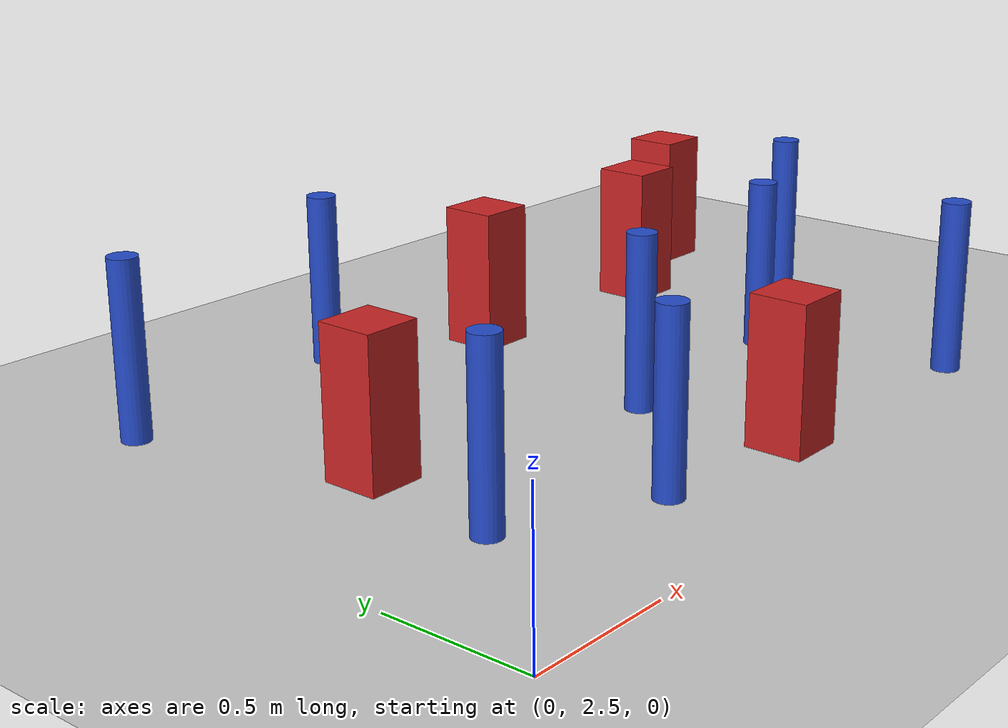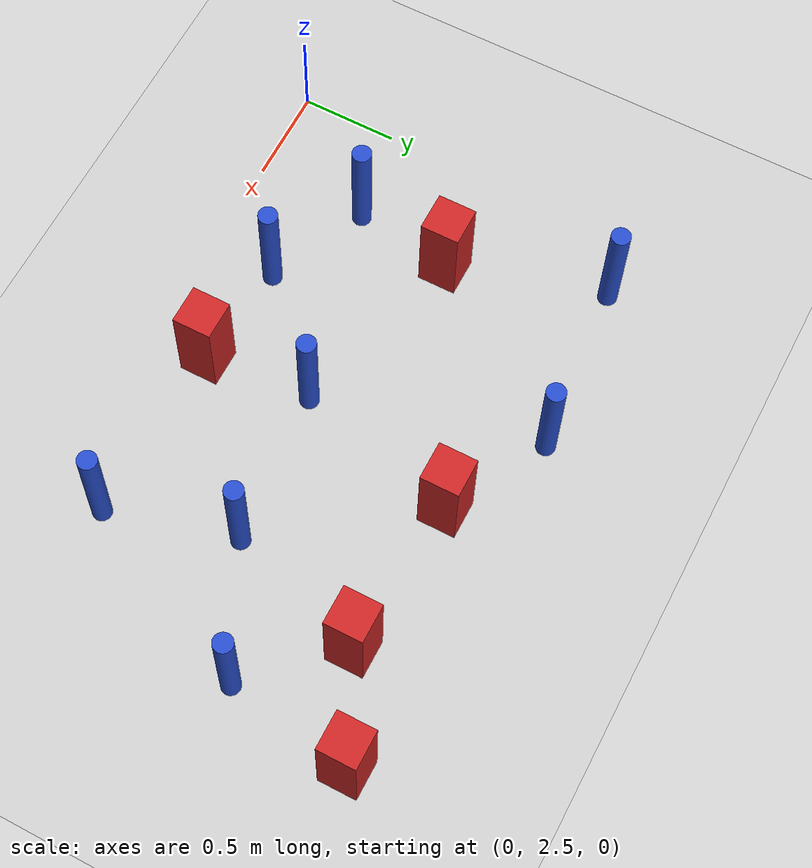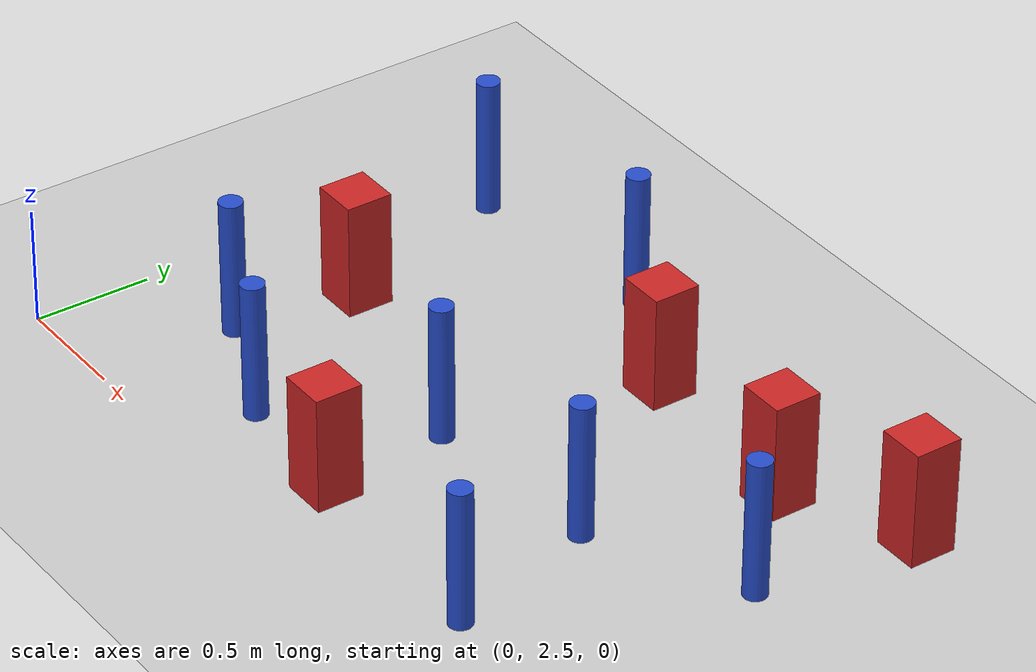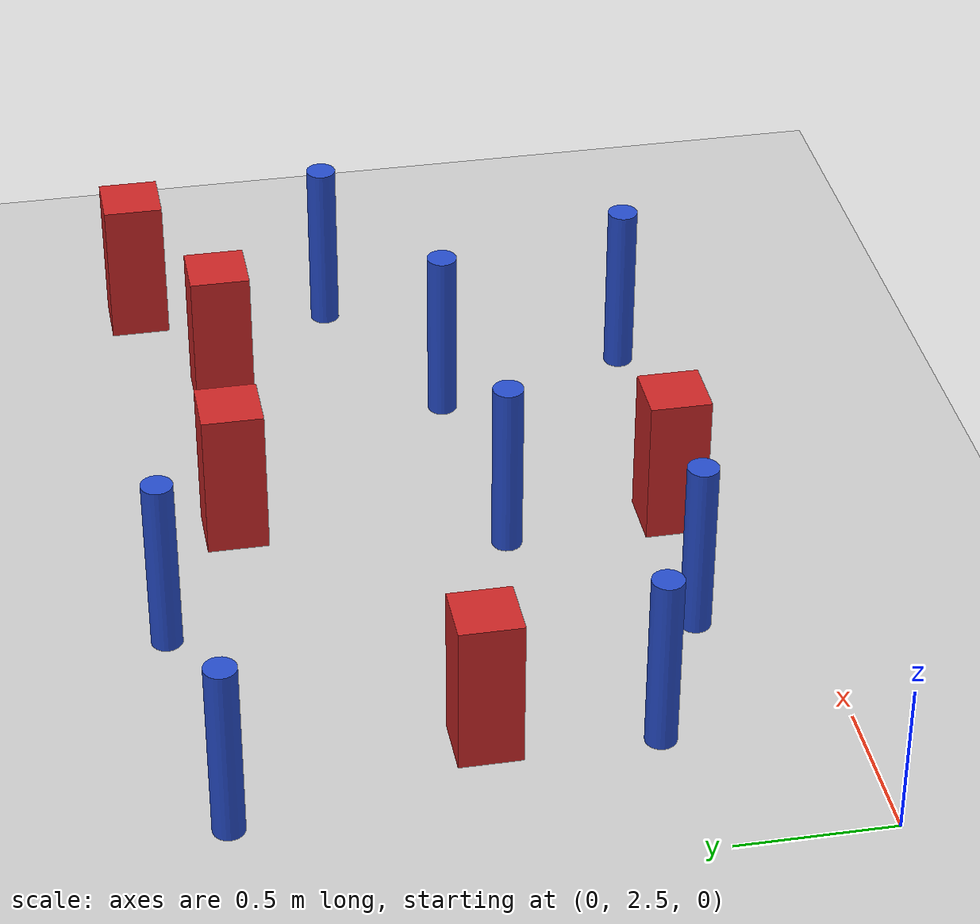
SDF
<sdf version="1.6">
 <world name="default">
  <model name="ground_plane">
   <static>1</static>
   <link name="link">
    <collision name="collision">
     <geometry><plane><normal>0 0 1</normal><size>100 100</size></plane></geometry>
     <surface><friction><ode><mu>100</mu><mu2>50</mu2></ode></friction></surface>
    </collision>
    <visual name="visual">
     <cast_shadows>0</cast_shadows>
     <geometry><plane><normal>0 0 1</normal><size>100 100</size></plane></geometry>
     <material>
      <ambient>1.0 1.0 1.0 1.0</ambient>
      <diffuse>0.8 0.8 0.8 1.0</diffuse>
      <specular>0.01 0.01 0.01 1.000000</specular>
     </material>
    </visual>
   </link>
  </model>
  <model name="pole_obstacle1">
   <static>true</static>
   <pose>3.00676567767 3.73780736281 7.38925637345e-09 -8.47170692798e-08 1.24976764939e-08 -1.74513093025e-07</pose>
   <link name="link">
    <pose>0 0 0.3 0 -0 0</pose>
    <inertial>
     <mass>1</mass>
     <inertia><ixx>0.145833</ixx><ixy>0</ixy><ixz>0</ixz><iyy>0.145833</iyy><iyz>0</iyz><izz>0.125</izz></inertia>
    </inertial>
    <collision name="collision">
     <geometry><cylinder><radius>0.05</radius><length>.6</length></cylinder></geometry>
    </collision>
    <visual name="visual">
     <geometry><cylinder><radius>0.05</radius><length>.6</length></cylinder></geometry>
     <material>
      <script><name>Gazebo/Blue</name><uri>file://media/materials/scripts/gazebo.material</uri></script>
     </material>
    </visual>
   </link>
  </model>
  <model name="square_post_obstacle17">
   <static>true</static>
   <pose>0.582227738402 3.61344862767 1.91545236811e-07 -7.35059704564e-06 1.12565212e-07 2.39332434364e-05</pose>
   <link name="link">
    <pose>0 0 0.25 0 -0 0</pose>
    <inertial>
     <mass>100</mass>
     <inertia>
      <ixx>0.166667</ixx>
      <ixy>0</ixy>
      <ixz>0</ixz>
      <iyy>0.166667</iyy>
      <iyz>0</iyz>
      <izz>0.166667</izz>
     </inertia>
    </inertial>
    <collision name="collision"><geometry><box><size>.2 .2 .5</size></box></geometry></collision>
    <visual name="visual">
     <geometry><box><size>.2 .2 .5</size></box></geometry>
     <material>
      <script><name>Gazebo/Red</name><uri>file://media/materials/scripts/gazebo.material</uri></script>
     </material>
    </visual>
   </link>
  </model>
  <model name="pole_obstacle21">
   <static>true</static>
   <pose>1.55318609625 3.35626687531 7.38925637345e-09 -8.47170692799e-08 1.24976765053e-08 -1.74513093017e-07</pose>
   <link name="link">
    <pose>0 0 0.3 0 -0 0</pose>
    <inertial>
     <mass>1</mass>
     <inertia><ixx>0.145833</ixx><ixy>0</ixy><ixz>0</ixz><iyy>0.145833</iyy><iyz>0</iyz><izz>0.125</izz></inertia>
    </inertial>
    <collision name="collision">
     <geometry><cylinder><radius>0.05</radius><length>.6</length></cylinder></geometry>
    </collision>
    <visual name="visual">
     <geometry><cylinder><radius>0.05</radius><length>.6</length></cylinder></geometry>
     <material>
      <script><name>Gazebo/Blue</name><uri>file://media/materials/scripts/gazebo.material</uri></script>
     </material>
    </visual>
   </link>
  </model>
  <model name="pole_obstacle23">
   <static>true</static>
   <pose>0.503475183956 3.09309964641 7.38925637345e-09 -8.471706928e-08 1.2497676512e-08 -1.74513093015e-07</pose>
   <link name="link">
    <pose>0 0 0.3 0 -0 0</pose>
    <inertial>
     <mass>1</mass>
     <inertia><ixx>0.145833</ixx><ixy>0</ixy><ixz>0</ixz><iyy>0.145833</iyy><iyz>0</iyz><izz>0.125</izz></inertia>
    </inertial>
    <collision name="collision">
     <geometry><cylinder><radius>0.05</radius><length>.6</length></cylinder></geometry>
    </collision>
    <visual name="visual">
     <geometry><cylinder><radius>0.05</radius><length>.6</length></cylinder></geometry>
     <material>
      <script><name>Gazebo/Blue</name><uri>file://media/materials/scripts/gazebo.material</uri></script>
     </material>
    </visual>
   </link>
  </model>
  <model name="pole_obstacle30">
   <static>true</static>
   <pose>2.36036367423 3.42401189032 7.38925637345e-09 -8.47170692798e-08 1.24976764939e-08 -1.74513093025e-07</pose>
   <link name="link">
    <pose>0 0 0.3 0 -0 0</pose>
    <inertial>
     <mass>1</mass>
     <inertia><ixx>0.145833</ixx><ixy>0</ixy><ixz>0</ixz><iyy>0.145833</iyy><iyz>0</iyz><izz>0.125</izz></inertia>
    </inertial>
    <collision name="collision">
     <geometry><cylinder><radius>0.05</radius><length>.6</length></cylinder></geometry>
    </collision>
    <visual name="visual">
     <geometry><cylinder><radius>0.05</radius><length>.6</length></cylinder></geometry>
     <material>
      <script><name>Gazebo/Blue</name><uri>file://media/materials/scripts/gazebo.material</uri></script>
     </material>
    </visual>
   </link>
  </model>
  <model name="pole_obstacle41">
   <static>true</static>
   <pose>0.337257957748 4.41213435781 7.38925637345e-09 -8.471706928e-08 1.24976765079e-08 -1.74513093015e-07</pose>
   <link name="link">
    <pose>0 0 0.3 0 -0 0</pose>
    <inertial>
     <mass>1</mass>
     <inertia><ixx>0.145833</ixx><ixy>0</ixy><ixz>0</ixz><iyy>0.145833</iyy><iyz>0</iyz><izz>0.125</izz></inertia>
    </inertial>
    <collision name="collision">
     <geometry><cylinder><radius>0.05</radius><length>.6</length></cylinder></geometry>
    </collision>
    <visual name="visual">
     <geometry><cylinder><radius>0.05</radius><length>.6</length></cylinder></geometry>
     <material>
      <script><name>Gazebo/Blue</name><uri>file://media/materials/scripts/gazebo.material</uri></script>
     </material>
    </visual>
   </link>
  </model>
  <model name="pole_obstacle63">
   <static>true</static>
   <pose>2.54129996785 2.76347063465 7.38925637345e-09 -8.47170692798e-08 1.24976764939e-08 -1.74513093025e-07</pose>
   <link name="link">
    <pose>0 0 0.3 0 -0 0</pose>
    <inertial>
     <mass>1</mass>
     <inertia><ixx>0.145833</ixx><ixy>0</ixy><ixz>0</ixz><iyy>0.145833</iyy><iyz>0</iyz><izz>0.125</izz></inertia>
    </inertial>
    <collision name="collision">
     <geometry><cylinder><radius>0.05</radius><length>.6</length></cylinder></geometry>
    </collision>
    <visual name="visual">
     <geometry><cylinder><radius>0.05</radius><length>.6</length></cylinder></geometry>
     <material>
      <script><name>Gazebo/Blue</name><uri>file://media/materials/scripts/gazebo.material</uri></script>
     </material>
    </visual>
   </link>
  </model>
  <model name="pole_obstacle67">
   <static>true</static>
   <pose>1.23654706711 4.49518239781 7.38925637345e-09 -8.47170692799e-08 1.24976765033e-08 -1.74513093018e-07</pose>
   <link name="link">
    <pose>0 0 0.3 0 -0 0</pose>
    <inertial>
     <mass>1</mass>
     <inertia><ixx>0.145833</ixx><ixy>0</ixy><ixz>0</ixz><iyy>0.145833</iyy><iyz>0</iyz><izz>0.125</izz></inertia>
    </inertial>
    <collision name="collision">
     <geometry><cylinder><radius>0.05</radius><length>.6</length></cylinder></geometry>
    </collision>
    <visual name="visual">
     <geometry><cylinder><radius>0.05</radius><length>.6</length></cylinder></geometry>
     <material>
      <script><name>Gazebo/Blue</name><uri>file://media/materials/scripts/gazebo.material</uri></script>
     </material>
    </visual>
   </link>
  </model>
  <model name="square_post_obstacle65">
   <static>true</static>
   <pose>1.59475968034 2.80629622628 1.91545236811e-07 -7.35059704564e-06 1.12565212e-07 2.39332434364e-05</pose>
   <link name="link">
    <pose>0 0 0.25 0 -0 0</pose>
    <inertial>
     <mass>100</mass>
     <inertia>
      <ixx>0.166667</ixx>
      <ixy>0</ixy>
      <ixz>0</ixz>
      <iyy>0.166667</iyy>
      <iyz>0</iyz>
      <izz>0.166667</izz>
     </inertia>
    </inertial>
    <collision name="collision"><geometry><box><size>.2 .2 .5</size></box></geometry></collision>
    <visual name="visual">
     <geometry><box><size>.2 .2 .5</size></box></geometry>
     <material>
      <script><name>Gazebo/Red</name><uri>file://media/materials/scripts/gazebo.material</uri></script>
     </material>
    </visual>
   </link>
  </model>
  <model name="square_post_obstacle96">
   <static>true</static>
   <pose>1.77273773107 4.21609472806 1.91545236811e-07 -7.35059704564e-06 1.12565212e-07 2.39332434364e-05</pose>
   <link name="link">
    <pose>0 0 0.25 0 -0 0</pose>
    <inertial>
     <mass>100</mass>
     <inertia>
      <ixx>0.166667</ixx>
      <ixy>0</ixy>
      <ixz>0</ixz>
      <iyy>0.166667</iyy>
      <iyz>0</iyz>
      <izz>0.166667</izz>
     </inertia>
    </inertial>
    <collision name="collision"><geometry><box><size>.2 .2 .5</size></box></geometry></collision>
    <visual name="visual">
     <geometry><box><size>.2 .2 .5</size></box></geometry>
     <material>
      <script><name>Gazebo/Red</name><uri>file://media/materials/scripts/gazebo.material</uri></script>
     </material>
    </visual>
   </link>
  </model>
  <model name="square_post_obstacle131">
   <static>true</static>
   <pose>2.59447474805 4.15691205259 1.91545236811e-07 -7.35059704564e-06 1.12565212e-07 2.39332434364e-05</pose>
   <link name="link">
    <pose>0 0 0.25 0 -0 0</pose>
    <inertial>
     <mass>100</mass>
     <inertia>
      <ixx>0.166667</ixx>
      <ixy>0</ixy>
      <ixz>0</ixz>
      <iyy>0.166667</iyy>
      <iyz>0</iyz>
      <izz>0.166667</izz>
     </inertia>
    </inertial>
    <collision name="collision"><geometry><box><size>.2 .2 .5</size></box></geometry></collision>
    <visual name="visual">
     <geometry><box><size>.2 .2 .5</size></box></geometry>
     <material>
      <script><name>Gazebo/Red</name><uri>file://media/materials/scripts/gazebo.material</uri></script>
     </material>
    </visual>
   </link>
  </model>
  <model name="square_post_obstacle150">
   <static>true</static>
   <pose>3.11073169026 4.3991337766 1.91545236811e-07 -7.35059704564e-06 1.12565212e-07 2.39332434364e-05</pose>
   <link name="link">
    <pose>0 0 0.25 0 -0 0</pose>
    <inertial>
     <mass>100</mass>
     <inertia>
      <ixx>0.166667</ixx>
      <ixy>0</ixy>
      <ixz>0</ixz>
      <iyy>0.166667</iyy>
      <iyz>0</iyz>
      <izz>0.166667</izz>
     </inertia>
    </inertial>
    <collision name="collision"><geometry><box><size>.2 .2 .5</size></box></geometry></collision>
    <visual name="visual">
     <geometry><box><size>.2 .2 .5</size></box></geometry>
     <material>
      <script><name>Gazebo/Red</name><uri>file://media/materials/scripts/gazebo.material</uri></script>
     </material>
    </visual>
   </link>
  </model>
  <model name="pole_obstacle174">
   <static>true</static>
   <pose>1.02781237304 2.85769696014 7.38925637345e-09 -8.471706928e-08 1.2497676505e-08 -1.74513093017e-07</pose>
   <link name="link">
    <pose>0 0 0.3 0 -0 0</pose>
    <inertial>
     <mass>1</mass>
     <inertia><ixx>0.145833</ixx><ixy>0</ixy><ixz>0</ixz><iyy>0.145833</iyy><iyz>0</iyz><izz>0.125</izz></inertia>
    </inertial>
    <collision name="collision">
     <geometry><cylinder><radius>0.05</radius><length>.6</length></cylinder></geometry>
    </collision>
    <visual name="visual">
     <geometry><cylinder><radius>0.05</radius><length>.6</length></cylinder></geometry>
     <material>
      <script><name>Gazebo/Blue</name><uri>file://media/materials/scripts/gazebo.material</uri></script>
     </material>
    </visual>
   </link>
  </model>
 </world>
</sdf>
